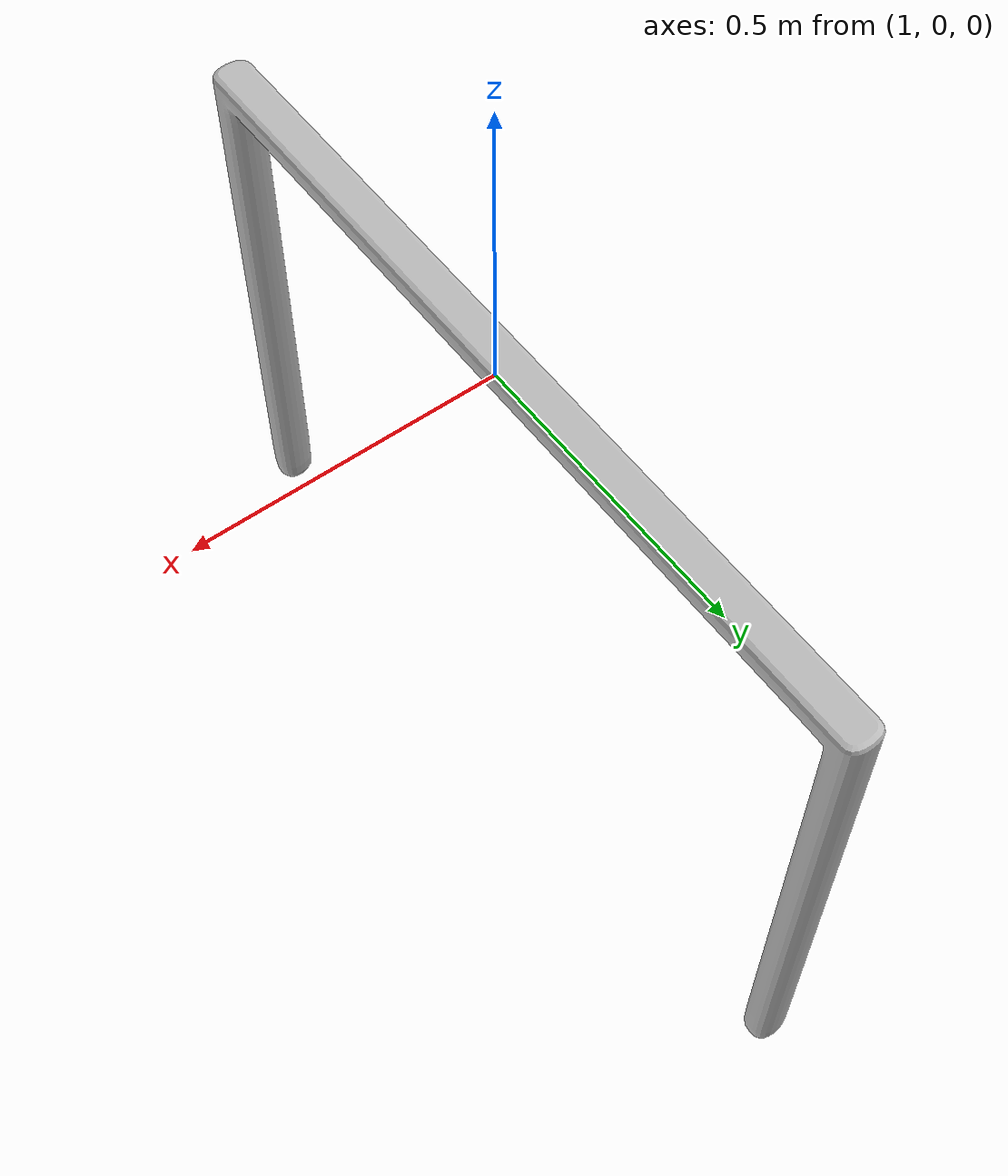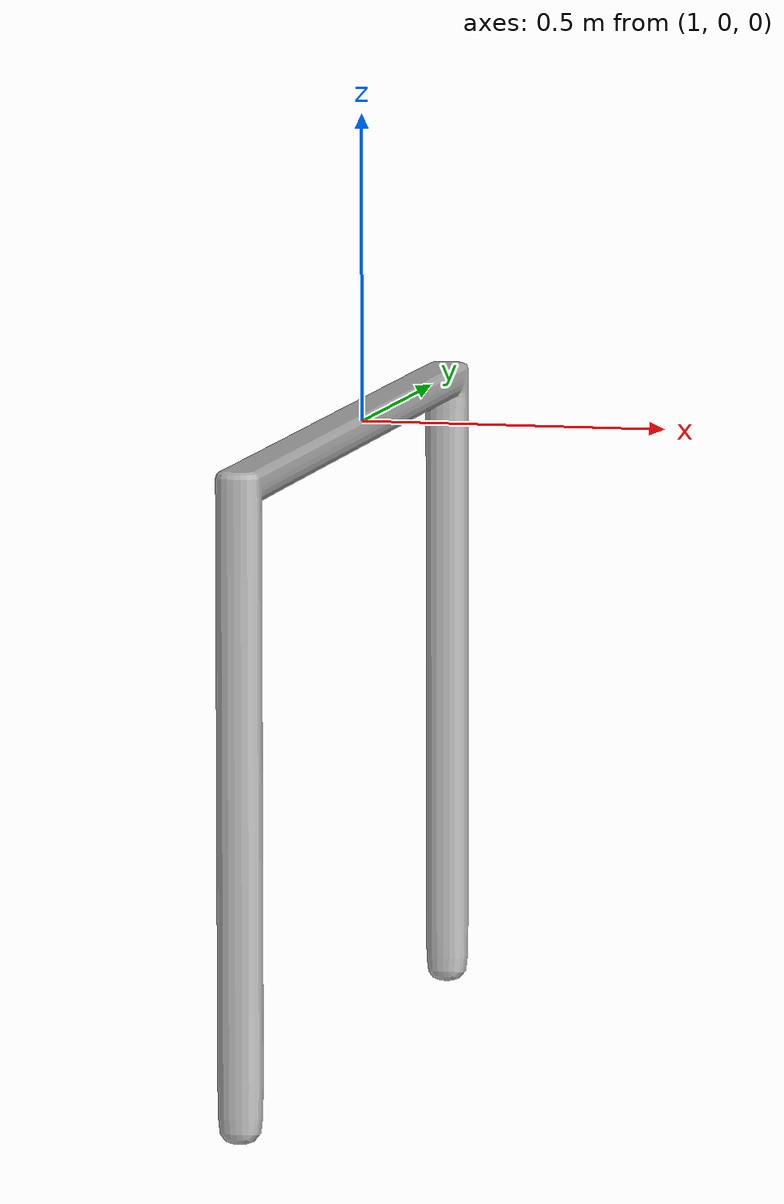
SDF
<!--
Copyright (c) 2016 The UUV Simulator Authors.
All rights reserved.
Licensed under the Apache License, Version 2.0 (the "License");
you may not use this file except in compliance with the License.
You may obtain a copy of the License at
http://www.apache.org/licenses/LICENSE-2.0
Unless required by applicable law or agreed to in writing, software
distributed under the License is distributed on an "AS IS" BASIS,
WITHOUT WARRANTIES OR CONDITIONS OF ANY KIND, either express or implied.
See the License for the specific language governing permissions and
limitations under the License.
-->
<?xml version="1.0" ?>
<sdf version="1.5">
  <model name="qualification_gate">
    <static>true</static>
    <link name="link">
      <collision name="gate_geom">
        <pose>0 0 0 0 0 1.57</pose>
        <geometry>
          <mesh>
            <uri>model://qualification_gate/meshes/qualification_gate.dae</uri>
          </mesh>
        </geometry>
      </collision>
      <visual name="gate">
        <cast_shadows>true</cast_shadows>
        <pose>0 0 0 0 0 1.57</pose>
        <geometry>
          <mesh>
            <uri>model://qualification_gate/meshes/qualification_gate.dae</uri>
          </mesh>
        </geometry>
      </visual>
    </link>
  </model>
</sdf>
